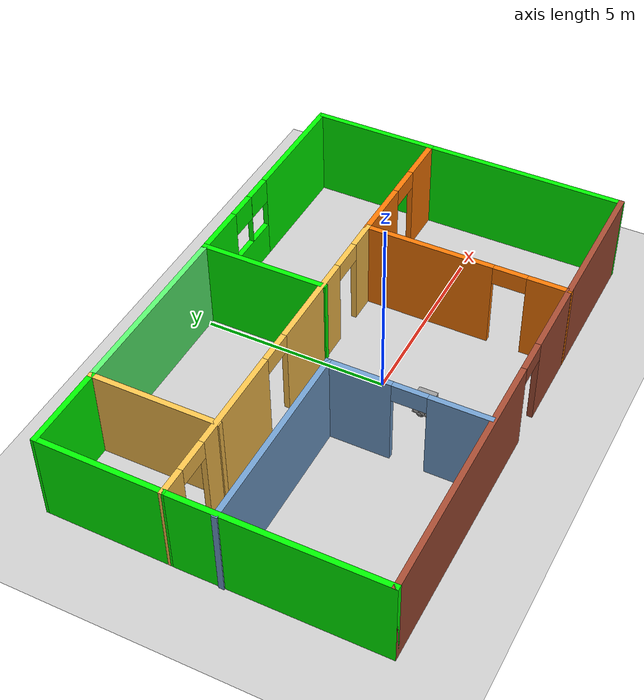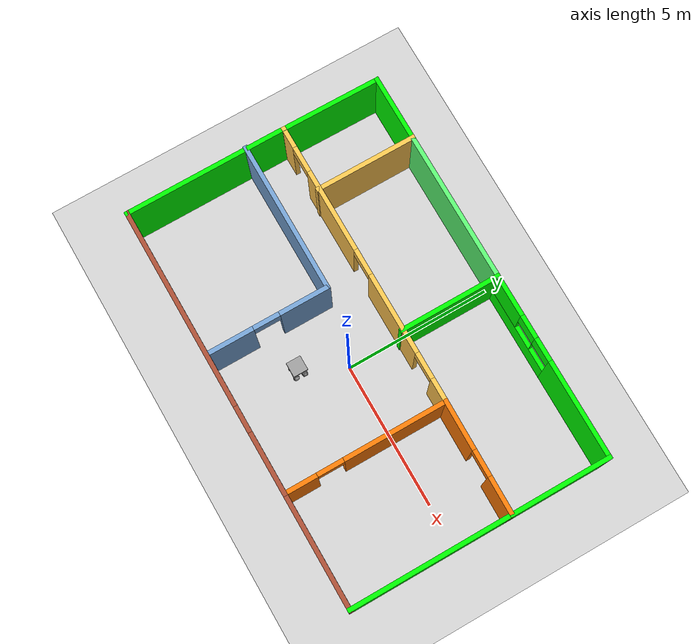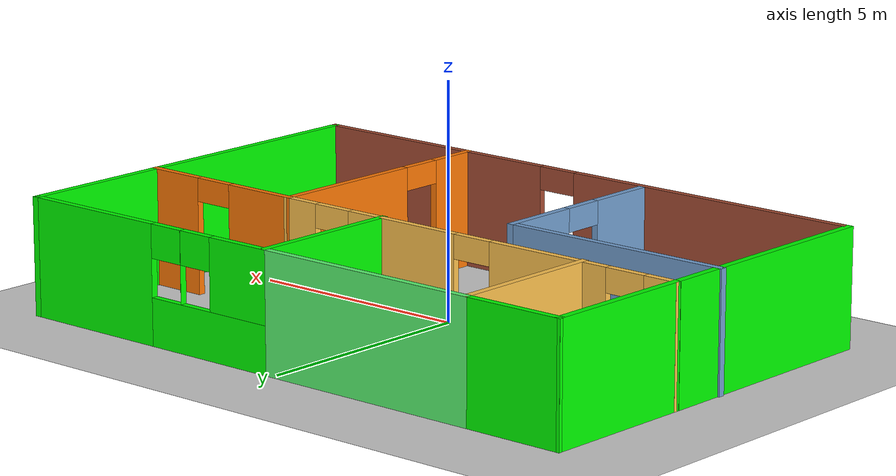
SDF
<sdf version="1.7">
 <world name="default">
  <model name="ground_plane">
   <static>1</static>
   <link name="link">
    <collision name="collision">
     <geometry><plane><normal>0 0 1</normal><size>100 100</size></plane></geometry>
     <surface>
      <contact><collide_bitmask>65535</collide_bitmask></contact>
      <friction><ode><mu>100</mu><mu2>50</mu2></ode></friction>
     </surface>
    </collision>
    <visual name="visual">
     <cast_shadows>0</cast_shadows>
     <geometry><plane><normal>0 0 1</normal><size>100 100</size></plane></geometry>
     <material>
      <script><uri>file://media/materials/scripts/gazebo.material</uri><name>Gazebo/Grey</name></script>
     </material>
    </visual>
   </link>
  </model>
  <model name="Building1">
   <pose>-0.30187 0.68592 0 0 -0 0</pose>
   <link name="Wall_13">
    <collision name="Wall_13_Collision">
     <geometry><box><size>5.5 0.15 2.5</size></box></geometry>
     <pose>0 0 1.25 0 -0 0</pose>
    </collision>
    <visual name="Wall_13_Visual">
     <pose>0 0 1.25 0 -0 0</pose>
     <geometry><box><size>5.5 0.15 2.5</size></box></geometry>
     <material>
      <script><uri>file://media/materials/scripts/gazebo.material</uri><name>Gazebo/Grey</name></script>
      <ambient>0 1 0 1</ambient>
     </material>
     <meta><layer>0</layer></meta>
    </visual>
    <pose>-6.82544 -1.72548 0 0 -0 -1.5708</pose>
   </link>
   <link name="Wall_15">
    <pose>-1.90044 -4.40048 0 0 -0 0</pose>
    <visual name="Wall_15_Visual_0">
     <pose>-1.52945 0 1.25 0 -0 0</pose>
     <geometry><box><size>6.94109 0.15 2.5</size></box></geometry>
     <material>
      <script><uri>file://media/materials/scripts/gazebo.material</uri><name>Gazebo/Bricks</name></script>
      <ambient>0 1 0 1</ambient>
     </material>
     <meta><layer>0</layer></meta>
    </visual>
    <collision name="Wall_15_Collision_0">
     <geometry><box><size>6.94109 0.15 2.5</size></box></geometry>
     <pose>-1.52945 0 1.25 0 -0 0</pose>
    </collision>
    <visual name="Wall_15_Visual_1">
     <pose>3.92055 0 1.25 0 -0 0</pose>
     <geometry><box><size>2.1589 0.15 2.5</size></box></geometry>
     <material>
      <script><uri>file://media/materials/scripts/gazebo.material</uri><name>Gazebo/Bricks</name></script>
      <ambient>0 1 0 1</ambient>
     </material>
     <meta><layer>0</layer></meta>
    </visual>
    <collision name="Wall_15_Collision_1">
     <geometry><box><size>2.1589 0.15 2.5</size></box></geometry>
     <pose>3.92055 0 1.25 0 -0 0</pose>
    </collision>
    <visual name="Wall_15_Visual_2">
     <pose>2.39109 0 2.25 0 -0 0</pose>
     <geometry><box><size>0.9 0.15 0.5</size></box></geometry>
     <material>
      <script><uri>file://media/materials/scripts/gazebo.material</uri><name>Gazebo/Bricks</name></script>
      <ambient>0 1 0 1</ambient>
     </material>
     <meta><layer>0</layer></meta>
    </visual>
    <collision name="Wall_15_Collision_2">
     <geometry><box><size>0.9 0.15 0.5</size></box></geometry>
     <pose>2.39109 0 2.25 0 -0 0</pose>
    </collision>
   </link>
   <link name="Wall_16">
    <pose>3.02456 -1.72548 0 0 -0 1.5708</pose>
    <visual name="Wall_16_Visual_0">
     <pose>-2.16708 0 1.25 0 -0 0</pose>
     <geometry><box><size>1.16585 0.15 2.5</size></box></geometry>
     <material>
      <script><uri>file://media/materials/scripts/gazebo.material</uri><name>Gazebo/Grey</name></script>
      <ambient>0.996078 0.47451 0.0196078 1</ambient>
     </material>
     <meta><layer>0</layer></meta>
    </visual>
    <collision name="Wall_16_Collision_0">
     <geometry><box><size>1.16585 0.15 2.5</size></box></geometry>
     <pose>-2.16708 0 1.25 0 -0 0</pose>
    </collision>
    <visual name="Wall_16_Visual_1">
     <pose>1.03293 0 1.25 0 -0 0</pose>
     <geometry><box><size>3.43415 0.15 2.5</size></box></geometry>
     <material>
      <script><uri>file://media/materials/scripts/gazebo.material</uri><name>Gazebo/Grey</name></script>
      <ambient>0.996078 0.47451 0.0196078 1</ambient>
     </material>
     <meta><layer>0</layer></meta>
    </visual>
    <collision name="Wall_16_Collision_1">
     <geometry><box><size>3.43415 0.15 2.5</size></box></geometry>
     <pose>1.03293 0 1.25 0 -0 0</pose>
    </collision>
    <visual name="Wall_16_Visual_2">
     <pose>-1.13415 0 2.25 0 -0 0</pose>
     <geometry><box><size>0.9 0.15 0.5</size></box></geometry>
     <material>
      <script><uri>file://media/materials/scripts/gazebo.material</uri><name>Gazebo/Grey</name></script>
      <ambient>0.996078 0.47451 0.0196078 1</ambient>
     </material>
     <meta><layer>0</layer></meta>
    </visual>
    <collision name="Wall_16_Collision_2">
     <geometry><box><size>0.9 0.15 0.5</size></box></geometry>
     <pose>-1.13415 0 2.25 0 -0 0</pose>
    </collision>
   </link>
   <link name="Wall_27">
    <pose>-1.7618 -2.28861 0 0 -0 -1.5708</pose>
    <visual name="Wall_27_Visual_0">
     <pose>-1.2562 0 1.25 0 -0 0</pose>
     <geometry><box><size>1.7376 0.15 2.5</size></box></geometry>
     <material>
      <script><uri>file://media/materials/scripts/gazebo.material</uri><name>Gazebo/Grey</name></script>
      <ambient>0.447059 0.623529 0.811765 1</ambient>
     </material>
     <meta><layer>0</layer></meta>
    </visual>
    <collision name="Wall_27_Collision_0">
     <geometry><box><size>1.7376 0.15 2.5</size></box></geometry>
     <pose>-1.2562 0 1.25 0 -0 0</pose>
    </collision>
    <visual name="Wall_27_Visual_1">
     <pose>1.3188 0 1.25 0 -0 0</pose>
     <geometry><box><size>1.6124 0.15 2.5</size></box></geometry>
     <material>
      <script><uri>file://media/materials/scripts/gazebo.material</uri><name>Gazebo/Grey</name></script>
      <ambient>0.447059 0.623529 0.811765 1</ambient>
     </material>
     <meta><layer>0</layer></meta>
    </visual>
    <collision name="Wall_27_Collision_1">
     <geometry><box><size>1.6124 0.15 2.5</size></box></geometry>
     <pose>1.3188 0 1.25 0 -0 0</pose>
    </collision>
    <visual name="Wall_27_Visual_2">
     <pose>0.062597 0 2.25 0 -0 0</pose>
     <geometry><box><size>0.9 0.15 0.5</size></box></geometry>
     <material>
      <script><uri>file://media/materials/scripts/gazebo.material</uri><name>Gazebo/Grey</name></script>
      <ambient>0.447059 0.623529 0.811765 1</ambient>
     </material>
     <meta><layer>0</layer></meta>
    </visual>
    <collision name="Wall_27_Collision_2">
     <geometry><box><size>0.9 0.15 0.5</size></box></geometry>
     <pose>0.062597 0 2.25 0 -0 0</pose>
    </collision>
   </link>
   <link name="Wall_29">
    <collision name="Wall_29_Collision">
     <geometry><box><size>5.25 0.15 2.5</size></box></geometry>
     <pose>0 0 1.25 0 -0 0</pose>
    </collision>
    <visual name="Wall_29_Visual">
     <pose>0 0 1.25 0 -0 0</pose>
     <geometry><box><size>5.25 0.15 2.5</size></box></geometry>
     <material>
      <script><uri>file://media/materials/scripts/gazebo.material</uri><name>Gazebo/Grey</name></script>
      <ambient>0.447059 0.623529 0.811765 1</ambient>
     </material>
     <meta><layer>0</layer></meta>
    </visual>
    <pose>-4.3118 -0.238606 0 0 -0 3.14159</pose>
   </link>
   <link name="Wall_33">
    <pose>-1.89541 1.08415 0 0 -0 0</pose>
    <visual name="Wall_33_Visual_0">
     <pose>-4.61696 0 1.25 0 -0 0</pose>
     <geometry><box><size>0.766073 0.15 2.5</size></box></geometry>
     <material>
      <script><uri>file://media/materials/scripts/gazebo.material</uri><name>Gazebo/Grey</name></script>
      <ambient>1 0.764706 0.305882 1</ambient>
     </material>
     <meta><layer>0</layer></meta>
    </visual>
    <collision name="Wall_33_Collision_0">
     <geometry><box><size>0.766073 0.15 2.5</size></box></geometry>
     <pose>-4.61696 0 1.25 0 -0 0</pose>
    </collision>
    <visual name="Wall_33_Visual_1">
     <pose>-1.89531 0 1.25 0 -0 0</pose>
     <geometry><box><size>2.87723 0.15 2.5</size></box></geometry>
     <material>
      <script><uri>file://media/materials/scripts/gazebo.material</uri><name>Gazebo/Grey</name></script>
      <ambient>1 0.764706 0.305882 1</ambient>
     </material>
     <meta><layer>0</layer></meta>
    </visual>
    <collision name="Wall_33_Collision_1">
     <geometry><box><size>2.87723 0.15 2.5</size></box></geometry>
     <pose>-1.89531 0 1.25 0 -0 0</pose>
    </collision>
    <visual name="Wall_33_Visual_2">
     <pose>1.83536 0 1.25 0 -0 0</pose>
     <geometry><box><size>2.78413 0.15 2.5</size></box></geometry>
     <material>
      <script><uri>file://media/materials/scripts/gazebo.material</uri><name>Gazebo/Grey</name></script>
      <ambient>1 0.764706 0.305882 1</ambient>
     </material>
     <meta><layer>0</layer></meta>
    </visual>
    <collision name="Wall_33_Collision_2">
     <geometry><box><size>2.78413 0.15 2.5</size></box></geometry>
     <pose>1.83536 0 1.25 0 -0 0</pose>
    </collision>
    <visual name="Wall_33_Visual_3">
     <pose>4.56371 0 1.25 0 -0 0</pose>
     <geometry><box><size>0.872571 0.15 2.5</size></box></geometry>
     <material>
      <script><uri>file://media/materials/scripts/gazebo.material</uri><name>Gazebo/Grey</name></script>
      <ambient>1 0.764706 0.305882 1</ambient>
     </material>
     <meta><layer>0</layer></meta>
    </visual>
    <collision name="Wall_33_Collision_3">
     <geometry><box><size>0.872571 0.15 2.5</size></box></geometry>
     <pose>4.56371 0 1.25 0 -0 0</pose>
    </collision>
    <visual name="Wall_33_Visual_4">
     <pose>-3.78393 0 2.25 0 -0 0</pose>
     <geometry><box><size>0.9 0.15 0.5</size></box></geometry>
     <material>
      <script><uri>file://media/materials/scripts/gazebo.material</uri><name>Gazebo/Grey</name></script>
      <ambient>1 0.764706 0.305882 1</ambient>
     </material>
     <meta><layer>0</layer></meta>
    </visual>
    <collision name="Wall_33_Collision_4">
     <geometry><box><size>0.9 0.15 0.5</size></box></geometry>
     <pose>-3.78393 0 2.25 0 -0 0</pose>
    </collision>
    <visual name="Wall_33_Visual_5">
     <pose>-0.006699 0 2.25 0 -0 0</pose>
     <geometry><box><size>0.9 0.15 0.5</size></box></geometry>
     <material>
      <script><uri>file://media/materials/scripts/gazebo.material</uri><name>Gazebo/Grey</name></script>
      <ambient>1 0.764706 0.305882 1</ambient>
     </material>
     <meta><layer>0</layer></meta>
    </visual>
    <collision name="Wall_33_Collision_5">
     <geometry><box><size>0.9 0.15 0.5</size></box></geometry>
     <pose>-0.006699 0 2.25 0 -0 0</pose>
    </collision>
    <visual name="Wall_33_Visual_6">
     <pose>3.67743 0 2.25 0 -0 0</pose>
     <geometry><box><size>0.9 0.15 0.5</size></box></geometry>
     <material>
      <script><uri>file://media/materials/scripts/gazebo.material</uri><name>Gazebo/Grey</name></script>
      <ambient>1 0.764706 0.305882 1</ambient>
     </material>
     <meta><layer>0</layer></meta>
    </visual>
    <collision name="Wall_33_Collision_6">
     <geometry><box><size>0.9 0.15 0.5</size></box></geometry>
     <pose>3.67743 0 2.25 0 -0 0</pose>
    </collision>
   </link>
   <link name="Wall_35">
    <collision name="Wall_35_Collision">
     <geometry><box><size>3.9867 0.15 2.5</size></box></geometry>
     <pose>0 0 1.25 0 -0 0</pose>
    </collision>
    <visual name="Wall_35_Visual">
     <pose>0 0 1.25 0 -0 0</pose>
     <geometry><box><size>3.9867 0.15 2.5</size></box></geometry>
     <material>
      <script><uri>file://media/materials/scripts/gazebo.material</uri><name>Gazebo/Bricks</name></script>
      <ambient>0 1 0 1</ambient>
     </material>
     <meta><layer>0</layer></meta>
    </visual>
    <pose>4.94285 -4.40035 0 0 -0 6.9e-05</pose>
   </link>
   <link name="Wall_36">
    <collision name="Wall_36_Collision">
     <geometry><box><size>5.6 0.15 2.5</size></box></geometry>
     <pose>0 0 1.25 0 -0 0</pose>
    </collision>
    <visual name="Wall_36_Visual">
     <pose>0 0 1.25 0 -0 0</pose>
     <geometry><box><size>5.6 0.15 2.5</size></box></geometry>
     <material>
      <script><uri>file://media/materials/scripts/gazebo.material</uri><name>Gazebo/Grey</name></script>
      <ambient>0 1 0 1</ambient>
     </material>
     <meta><layer>0</layer></meta>
    </visual>
    <pose>6.86113 -1.67522 0 0 -0 1.5708</pose>
   </link>
   <link name="Wall_38">
    <pose>4.94536 1.06696 0 0 -0 -0.008971</pose>
    <visual name="Wall_38_Visual_0">
     <pose>-1.12654 0 1.25 0 -0 0</pose>
     <geometry><box><size>1.72862 0.15 2.5</size></box></geometry>
     <material>
      <script><uri>file://media/materials/scripts/gazebo.material</uri><name>Gazebo/Grey</name></script>
      <ambient>0.996078 0.47451 0.0196078 1</ambient>
     </material>
     <meta><layer>0</layer></meta>
    </visual>
    <collision name="Wall_38_Collision_0">
     <geometry><box><size>1.72862 0.15 2.5</size></box></geometry>
     <pose>-1.12654 0 1.25 0 -0 0</pose>
    </collision>
    <visual name="Wall_38_Visual_1">
     <pose>1.31431 0 1.25 0 -0 0</pose>
     <geometry><box><size>1.35308 0.15 2.5</size></box></geometry>
     <material>
      <script><uri>file://media/materials/scripts/gazebo.material</uri><name>Gazebo/Grey</name></script>
      <ambient>0.996078 0.47451 0.0196078 1</ambient>
     </material>
     <meta><layer>0</layer></meta>
    </visual>
    <collision name="Wall_38_Collision_1">
     <geometry><box><size>1.35308 0.15 2.5</size></box></geometry>
     <pose>1.31431 0 1.25 0 -0 0</pose>
    </collision>
    <visual name="Wall_38_Visual_2">
     <pose>0.18777 0 2.25 0 -0 0</pose>
     <geometry><box><size>0.9 0.15 0.5</size></box></geometry>
     <material>
      <script><uri>file://media/materials/scripts/gazebo.material</uri><name>Gazebo/Grey</name></script>
      <ambient>0.996078 0.47451 0.0196078 1</ambient>
     </material>
     <meta><layer>0</layer></meta>
    </visual>
    <collision name="Wall_38_Collision_2">
     <geometry><box><size>0.9 0.15 0.5</size></box></geometry>
     <pose>0.18777 0 2.25 0 -0 0</pose>
    </collision>
   </link>
   <link name="Wall_43">
    <collision name="Wall_43_Collision">
     <geometry><box><size>3.5 0.15 2.5</size></box></geometry>
     <pose>0 0 1.25 0 -0 0</pose>
    </collision>
    <visual name="Wall_43_Visual">
     <pose>0 0 1.25 0 -0 0</pose>
     <geometry><box><size>3.5 0.15 2.5</size></box></geometry>
     <material>
      <script><uri>file://media/materials/scripts/gazebo.material</uri><name>Gazebo/Grey</name></script>
      <ambient>0 1 0 1</ambient>
     </material>
     <meta><layer>0</layer></meta>
    </visual>
    <pose>6.86113 2.72478 0 0 -0 1.5708</pose>
   </link>
   <link name="Wall_44">
    <pose>3.68613 4.39978 0 0 -0 3.14159</pose>
    <visual name="Wall_44_Visual_0">
     <pose>-1.54778 0 1.25 0 -0 0</pose>
     <geometry><box><size>3.40444 0.15 2.5</size></box></geometry>
     <material>
      <script><uri>file://media/materials/scripts/gazebo.material</uri><name>Gazebo/Grey</name></script>
      <ambient>0 1 0 1</ambient>
     </material>
     <meta><layer>0</layer></meta>
    </visual>
    <collision name="Wall_44_Collision_0">
     <geometry><box><size>3.40444 0.15 2.5</size></box></geometry>
     <pose>-1.54778 0 1.25 0 -0 0</pose>
    </collision>
    <visual name="Wall_44_Visual_1">
     <pose>1.70222 0 0.5 0 -0 0</pose>
     <geometry><box><size>3.09556 0.15 1</size></box></geometry>
     <material>
      <script><uri>file://media/materials/scripts/gazebo.material</uri><name>Gazebo/Grey</name></script>
      <ambient>0 1 0 1</ambient>
     </material>
     <meta><layer>0</layer></meta>
    </visual>
    <collision name="Wall_44_Collision_1">
     <geometry><box><size>3.09556 0.15 1</size></box></geometry>
     <pose>1.70222 0 0.5 0 -0 0</pose>
    </collision>
    <visual name="Wall_44_Visual_2">
     <pose>0.956713 0 1.75 0 -0 0</pose>
     <geometry><box><size>0.004543 0.15 1.5</size></box></geometry>
     <material>
      <script><uri>file://media/materials/scripts/gazebo.material</uri><name>Gazebo/Grey</name></script>
      <ambient>0 1 0 1</ambient>
     </material>
     <meta><layer>0</layer></meta>
    </visual>
    <collision name="Wall_44_Collision_2">
     <geometry><box><size>0.004543 0.15 1.5</size></box></geometry>
     <pose>0.956713 0 1.75 0 -0 0</pose>
    </collision>
    <visual name="Wall_44_Visual_3">
     <pose>2.50449 0 1.75 0 -0 0</pose>
     <geometry><box><size>1.49102 0.15 1.5</size></box></geometry>
     <material>
      <script><uri>file://media/materials/scripts/gazebo.material</uri><name>Gazebo/Grey</name></script>
      <ambient>0 1 0 1</ambient>
     </material>
     <meta><layer>0</layer></meta>
    </visual>
    <collision name="Wall_44_Collision_3">
     <geometry><box><size>1.49102 0.15 1.5</size></box></geometry>
     <pose>2.50449 0 1.75 0 -0 0</pose>
    </collision>
    <visual name="Wall_44_Visual_4">
     <pose>0.554441 0 2.15 0 -0 0</pose>
     <geometry><box><size>0.8 0.15 0.7</size></box></geometry>
     <material>
      <script><uri>file://media/materials/scripts/gazebo.material</uri><name>Gazebo/Grey</name></script>
      <ambient>0 1 0 1</ambient>
     </material>
     <meta><layer>0</layer></meta>
    </visual>
    <collision name="Wall_44_Collision_4">
     <geometry><box><size>0.8 0.15 0.7</size></box></geometry>
     <pose>0.554441 0 2.15 0 -0 0</pose>
    </collision>
    <visual name="Wall_44_Visual_5">
     <pose>1.35898 0 2.15 0 -0 0</pose>
     <geometry><box><size>0.8 0.15 0.7</size></box></geometry>
     <material>
      <script><uri>file://media/materials/scripts/gazebo.material</uri><name>Gazebo/Grey</name></script>
      <ambient>0 1 0 1</ambient>
     </material>
     <meta><layer>0</layer></meta>
    </visual>
    <collision name="Wall_44_Collision_5">
     <geometry><box><size>0.8 0.15 0.7</size></box></geometry>
     <pose>1.35898 0 2.15 0 -0 0</pose>
    </collision>
   </link>
   <link name="Wall_45">
    <collision name="Wall_45_Collision">
     <geometry><box><size>3.5 0.15 2.5</size></box></geometry>
     <pose>0 0 1.25 0 -0 0</pose>
    </collision>
    <visual name="Wall_45_Visual">
     <pose>0 0 1.25 0 -0 0</pose>
     <geometry><box><size>3.5 0.15 2.5</size></box></geometry>
     <material>
      <script><uri>file://media/materials/scripts/gazebo.material</uri><name>Gazebo/Grey</name></script>
      <ambient>0 1 0 1</ambient>
     </material>
     <meta><layer>0</layer></meta>
    </visual>
    <pose>0.511131 2.72478 0 0 -0 -1.5708</pose>
   </link>
   <link name="Wall_47">
    <collision name="Wall_47_Collision">
     <geometry><box><size>5.25 0.15 2.5</size></box></geometry>
     <pose>0 0 1.25 0 -0 0</pose>
    </collision>
    <visual name="Wall_47_Visual">
     <pose>0 0 1.25 0 -0 0</pose>
     <geometry><box><size>5.25 0.15 2.5</size></box></geometry>
     <material>
      <script><uri>file://media/materials/scripts/gazebo.material</uri><name>Gazebo/Grey</name></script>
      <ambient>0.352941 0.968627 0.439216 1</ambient>
     </material>
     <meta><layer>0</layer></meta>
    </visual>
    <pose>-2.03887 4.39978 0 0 -0 3.14159</pose>
   </link>
   <link name="Wall_48">
    <collision name="Wall_48_Collision">
     <geometry><box><size>3.5 0.15 2.5</size></box></geometry>
     <pose>0 0 1.25 0 -0 0</pose>
    </collision>
    <visual name="Wall_48_Visual">
     <pose>0 0 1.25 0 -0 0</pose>
     <geometry><box><size>3.5 0.15 2.5</size></box></geometry>
     <material>
      <script><uri>file://media/materials/scripts/gazebo.material</uri><name>Gazebo/Grey</name></script>
      <ambient>1 0.764706 0.305882 1</ambient>
     </material>
     <meta><layer>0</layer></meta>
    </visual>
    <pose>-4.58887 2.72478 0 0 -0 -1.5708</pose>
   </link>
   <link name="Wall_50">
    <collision name="Wall_50_Collision">
     <geometry><box><size>2.35 0.15 2.5</size></box></geometry>
     <pose>0 0 1.25 0 -0 0</pose>
    </collision>
    <visual name="Wall_50_Visual">
     <pose>0 0 1.25 0 -0 0</pose>
     <geometry><box><size>2.35 0.15 2.5</size></box></geometry>
     <material>
      <script><uri>file://media/materials/scripts/gazebo.material</uri><name>Gazebo/Grey</name></script>
      <ambient>0 1 0 1</ambient>
     </material>
     <meta><layer>0</layer></meta>
    </visual>
    <pose>-5.68887 4.39978 0 0 -0 3.14159</pose>
   </link>
   <link name="Wall_52">
    <collision name="Wall_52_Collision">
     <geometry><box><size>3.46578 0.15 2.5</size></box></geometry>
     <pose>0 0 1.25 0 -0 0</pose>
    </collision>
    <visual name="Wall_52_Visual">
     <pose>0 0 1.25 0 -0 0</pose>
     <geometry><box><size>3.46578 0.15 2.5</size></box></geometry>
     <material>
      <script><uri>file://media/materials/scripts/gazebo.material</uri><name>Gazebo/Grey</name></script>
      <ambient>0 1 0 1</ambient>
     </material>
     <meta><layer>0</layer></meta>
    </visual>
    <pose>-6.80464 2.74196 0 0 -0 -1.58031</pose>
   </link>
   <static>1</static>
  </model>
  <model name="2LeggedBot_clone">
   <link name="link_0">
    <inertial>
     <mass>1</mass>
     <inertia><ixx>0.1</ixx><ixy>0</ixy><ixz>0</ixz><iyy>0.1</iyy><iyz>0</iyz><izz>0.1</izz></inertia>
    </inertial>
    <pose>0.169699 -0.170527 -0.315363 0 -0 0</pose>
    <visual name="visual">
     <geometry><sphere><radius>0.1</radius></sphere></geometry>
     <material>
      <lighting>1</lighting>
      <script><uri>file://media/materials/scripts/gazebo.material</uri><name>Gazebo/Grey</name></script>
      <shader type="pixel"><normal_map>__default__</normal_map></shader>
      <ambient>0.3 0.3 0.3 1</ambient>
      <diffuse>0.7 0.7 0.7 1</diffuse>
      <specular>0.01 0.01 0.01 1</specular>
      <emissive>0 0 0 1</emissive>
     </material>
    </visual>
    <visual name="ModelPreview_2::link_0::visual_1">
     <geometry><sphere><radius>0.1</radius></sphere></geometry>
     <material>
      <lighting>1</lighting>
      <script><uri>file://media/materials/scripts/gazebo.material</uri><name>Gazebo/Grey</name></script>
      <shader type="pixel"><normal_map>__default__</normal_map></shader>
      <ambient>0.3 0.3 0.3 1</ambient>
      <diffuse>0.7 0.7 0.7 1</diffuse>
      <specular>0.01 0.01 0.01 1</specular>
      <emissive>0 0 0 1</emissive>
     </material>
    </visual>
    <collision name="collision">
     <geometry><sphere><radius>0.1</radius></sphere></geometry>
     <surface>
      <friction>
       <ode><mu>1</mu><mu2>1</mu2><fdir1>0 0 0</fdir1><slip1>0</slip1><slip2>0</slip2></ode>
       <torsional>
        <coefficient>1</coefficient>
        <patch_radius>0</patch_radius>
        <surface_radius>0</surface_radius>
        <use_patch_radius>1</use_patch_radius>
        <ode><slip>0</slip></ode>
       </torsional>
      </friction>
      <bounce><restitution_coefficient>0</restitution_coefficient><threshold>1e+06</threshold></bounce>
      <contact>
       <collide_without_contact>0</collide_without_contact>
       <collide_without_contact_bitmask>1</collide_without_contact_bitmask>
       <collide_bitmask>1</collide_bitmask>
       <ode>
        <soft_cfm>0</soft_cfm>
        <soft_erp>0.2</soft_erp>
        <kp>1e+13</kp>
        <kd>1</kd>
        <max_vel>0.01</max_vel>
        <min_depth>0</min_depth>
       </ode>
       <bullet>
        <split_impulse>1</split_impulse>
        <split_impulse_penetration_threshold>-0.01</split_impulse_penetration_threshold>
        <soft_cfm>0</soft_cfm>
        <soft_erp>0.2</soft_erp>
        <kp>1e+13</kp>
        <kd>1</kd>
       </bullet>
      </contact>
     </surface>
    </collision>
   </link>
   <link name="link_0_clone">
    <inertial>
     <mass>1</mass>
     <inertia><ixx>0.1</ixx><ixy>0</ixy><ixz>0</ixz><iyy>0.1</iyy><iyz>0</iyz><izz>0.1</izz></inertia>
    </inertial>
    <pose>0.169699 0.129473 -0.315363 0 -0 0</pose>
    <visual name="visual">
     <geometry><sphere><radius>0.1</radius></sphere></geometry>
     <material>
      <lighting>1</lighting>
      <script><uri>file://media/materials/scripts/gazebo.material</uri><name>Gazebo/Grey</name></script>
      <shader type="pixel"><normal_map>__default__</normal_map></shader>
      <ambient>0.3 0.3 0.3 1</ambient>
      <diffuse>0.7 0.7 0.7 1</diffuse>
      <specular>0.01 0.01 0.01 1</specular>
      <emissive>0 0 0 1</emissive>
     </material>
    </visual>
    <visual name="visual_1">
     <geometry><sphere><radius>0.1</radius></sphere></geometry>
     <material>
      <lighting>1</lighting>
      <script><uri>file://media/materials/scripts/gazebo.material</uri><name>Gazebo/Grey</name></script>
      <shader type="pixel"><normal_map>__default__</normal_map></shader>
      <ambient>0.3 0.3 0.3 1</ambient>
      <diffuse>0.7 0.7 0.7 1</diffuse>
      <specular>0.01 0.01 0.01 1</specular>
      <emissive>0 0 0 1</emissive>
     </material>
    </visual>
    <collision name="collision">
     <geometry><sphere><radius>0.1</radius></sphere></geometry>
     <surface>
      <friction>
       <ode><mu>1</mu><mu2>1</mu2><fdir1>0 0 0</fdir1><slip1>0</slip1><slip2>0</slip2></ode>
       <torsional>
        <coefficient>1</coefficient>
        <patch_radius>0</patch_radius>
        <surface_radius>0</surface_radius>
        <use_patch_radius>1</use_patch_radius>
        <ode><slip>0</slip></ode>
       </torsional>
      </friction>
      <bounce><restitution_coefficient>0</restitution_coefficient><threshold>1e+06</threshold></bounce>
      <contact>
       <collide_without_contact>0</collide_without_contact>
       <collide_without_contact_bitmask>1</collide_without_contact_bitmask>
       <collide_bitmask>1</collide_bitmask>
       <ode>
        <soft_cfm>0</soft_cfm>
        <soft_erp>0.2</soft_erp>
        <kp>1e+13</kp>
        <kd>1</kd>
        <max_vel>0.01</max_vel>
        <min_depth>0</min_depth>
       </ode>
       <bullet>
        <split_impulse>1</split_impulse>
        <split_impulse_penetration_threshold>-0.01</split_impulse_penetration_threshold>
        <soft_cfm>0</soft_cfm>
        <soft_erp>0.2</soft_erp>
        <kp>1e+13</kp>
        <kd>1</kd>
       </bullet>
      </contact>
     </surface>
    </collision>
   </link>
   <link name="link_0_clone_0">
    <inertial>
     <mass>1</mass>
     <inertia><ixx>0.1</ixx><ixy>0</ixy><ixz>0</ixz><iyy>0.1</iyy><iyz>0</iyz><izz>0.1</izz></inertia>
    </inertial>
    <pose>-0.088021 0.142639 0.064349 0 -0 0</pose>
    <visual name="visual_1">
     <geometry><sphere><radius>0.1</radius></sphere></geometry>
     <material>
      <lighting>1</lighting>
      <script><uri>file://media/materials/scripts/gazebo.material</uri><name>Gazebo/Grey</name></script>
      <shader type="pixel"><normal_map>__default__</normal_map></shader>
      <ambient>0.3 0.3 0.3 1</ambient>
      <diffuse>0.7 0.7 0.7 1</diffuse>
      <specular>0.01 0.01 0.01 1</specular>
      <emissive>0 0 0 1</emissive>
     </material>
    </visual>
    <visual name="visual">
     <geometry><sphere><radius>0.1</radius></sphere></geometry>
     <material>
      <lighting>1</lighting>
      <script><uri>file://media/materials/scripts/gazebo.material</uri><name>Gazebo/Grey</name></script>
      <shader type="pixel"><normal_map>__default__</normal_map></shader>
      <ambient>0.3 0.3 0.3 1</ambient>
      <diffuse>0.7 0.7 0.7 1</diffuse>
      <specular>0.01 0.01 0.01 1</specular>
      <emissive>0 0 0 1</emissive>
     </material>
    </visual>
    <collision name="collision">
     <geometry><sphere><radius>0.1</radius></sphere></geometry>
     <surface>
      <friction>
       <ode><mu>1</mu><mu2>1</mu2><fdir1>0 0 0</fdir1><slip1>0</slip1><slip2>0</slip2></ode>
       <torsional>
        <coefficient>1</coefficient>
        <patch_radius>0</patch_radius>
        <surface_radius>0</surface_radius>
        <use_patch_radius>1</use_patch_radius>
        <ode><slip>0</slip></ode>
       </torsional>
      </friction>
      <bounce><restitution_coefficient>0</restitution_coefficient><threshold>1e+06</threshold></bounce>
      <contact>
       <collide_without_contact>0</collide_without_contact>
       <collide_without_contact_bitmask>1</collide_without_contact_bitmask>
       <collide_bitmask>1</collide_bitmask>
       <ode>
        <soft_cfm>0</soft_cfm>
        <soft_erp>0.2</soft_erp>
        <kp>1e+13</kp>
        <kd>1</kd>
        <max_vel>0.01</max_vel>
        <min_depth>0</min_depth>
       </ode>
       <bullet>
        <split_impulse>1</split_impulse>
        <split_impulse_penetration_threshold>-0.01</split_impulse_penetration_threshold>
        <soft_cfm>0</soft_cfm>
        <soft_erp>0.2</soft_erp>
        <kp>1e+13</kp>
        <kd>1</kd>
       </bullet>
      </contact>
     </surface>
    </collision>
   </link>
   <link name="link_0_clone_1">
    <inertial>
     <mass>1</mass>
     <inertia><ixx>0.1</ixx><ixy>0</ixy><ixz>0</ixz><iyy>0.1</iyy><iyz>0</iyz><izz>0.1</izz></inertia>
    </inertial>
    <pose>-0.092915 -0.172952 0.04398 0 -0 0</pose>
    <visual name="visual">
     <geometry><sphere><radius>0.1</radius></sphere></geometry>
     <material>
      <lighting>1</lighting>
      <script><uri>file://media/materials/scripts/gazebo.material</uri><name>Gazebo/Grey</name></script>
      <shader type="pixel"><normal_map>__default__</normal_map></shader>
      <ambient>0.3 0.3 0.3 1</ambient>
      <diffuse>0.7 0.7 0.7 1</diffuse>
      <specular>0.01 0.01 0.01 1</specular>
      <emissive>0 0 0 1</emissive>
     </material>
    </visual>
    <visual name="visual_1">
     <geometry><sphere><radius>0.1</radius></sphere></geometry>
     <material>
      <lighting>1</lighting>
      <script><uri>file://media/materials/scripts/gazebo.material</uri><name>Gazebo/Grey</name></script>
      <shader type="pixel"><normal_map>__default__</normal_map></shader>
      <ambient>0.3 0.3 0.3 1</ambient>
      <diffuse>0.7 0.7 0.7 1</diffuse>
      <specular>0.01 0.01 0.01 1</specular>
      <emissive>0 0 0 1</emissive>
     </material>
    </visual>
    <collision name="collision">
     <geometry><sphere><radius>0.1</radius></sphere></geometry>
     <surface>
      <friction>
       <ode><mu>1</mu><mu2>1</mu2><fdir1>0 0 0</fdir1><slip1>0</slip1><slip2>0</slip2></ode>
       <torsional>
        <coefficient>1</coefficient>
        <patch_radius>0</patch_radius>
        <surface_radius>0</surface_radius>
        <use_patch_radius>1</use_patch_radius>
        <ode><slip>0</slip></ode>
       </torsional>
      </friction>
      <bounce><restitution_coefficient>0</restitution_coefficient><threshold>1e+06</threshold></bounce>
      <contact>
       <collide_without_contact>0</collide_without_contact>
       <collide_without_contact_bitmask>1</collide_without_contact_bitmask>
       <collide_bitmask>1</collide_bitmask>
       <ode>
        <soft_cfm>0</soft_cfm>
        <soft_erp>0.2</soft_erp>
        <kp>1e+13</kp>
        <kd>1</kd>
        <max_vel>0.01</max_vel>
        <min_depth>0</min_depth>
       </ode>
       <bullet>
        <split_impulse>1</split_impulse>
        <split_impulse_penetration_threshold>-0.01</split_impulse_penetration_threshold>
        <soft_cfm>0</soft_cfm>
        <soft_erp>0.2</soft_erp>
        <kp>1e+13</kp>
        <kd>1</kd>
       </bullet>
      </contact>
     </surface>
    </collision>
   </link>
   <link name="link_2">
    <inertial>
     <mass>1</mass>
     <inertia>
      <ixx>0.166667</ixx>
      <ixy>0</ixy>
      <ixz>0</ixz>
      <iyy>0.166667</iyy>
      <iyz>0</iyz>
      <izz>0.166667</izz>
     </inertia>
    </inertial>
    <pose>0.063484 -0.170527 -0.161345 0 -0.5234 0</pose>
    <visual name="visual">
     <geometry><box><size>0.15 0.15 0.5</size></box></geometry>
     <material>
      <lighting>1</lighting>
      <script><uri>file://media/materials/scripts/gazebo.material</uri><name>Gazebo/Grey</name></script>
      <shader type="pixel"><normal_map>__default__</normal_map></shader>
      <ambient>0.3 0.3 0.3 1</ambient>
      <diffuse>0.7 0.7 0.7 1</diffuse>
      <specular>0.01 0.01 0.01 1</specular>
      <emissive>0 0 0 1</emissive>
     </material>
    </visual>
    <collision name="collision">
     <geometry><box><size>0.15 0.15 0.5</size></box></geometry>
     <surface>
      <friction>
       <ode><mu>1</mu><mu2>1</mu2><fdir1>0 0 0</fdir1><slip1>0</slip1><slip2>0</slip2></ode>
       <torsional>
        <coefficient>1</coefficient>
        <patch_radius>0</patch_radius>
        <surface_radius>0</surface_radius>
        <use_patch_radius>1</use_patch_radius>
        <ode><slip>0</slip></ode>
       </torsional>
      </friction>
      <bounce><restitution_coefficient>0</restitution_coefficient><threshold>1e+06</threshold></bounce>
      <contact>
       <collide_without_contact>0</collide_without_contact>
       <collide_without_contact_bitmask>1</collide_without_contact_bitmask>
       <collide_bitmask>1</collide_bitmask>
       <ode>
        <soft_cfm>0</soft_cfm>
        <soft_erp>0.2</soft_erp>
        <kp>1e+13</kp>
        <kd>1</kd>
        <max_vel>0.01</max_vel>
        <min_depth>0</min_depth>
       </ode>
       <bullet>
        <split_impulse>1</split_impulse>
        <split_impulse_penetration_threshold>-0.01</split_impulse_penetration_threshold>
        <soft_cfm>0</soft_cfm>
        <soft_erp>0.2</soft_erp>
        <kp>1e+13</kp>
        <kd>1</kd>
       </bullet>
      </contact>
     </surface>
    </collision>
   </link>
   <link name="link_2_clone">
    <inertial>
     <mass>1</mass>
     <inertia>
      <ixx>0.166667</ixx>
      <ixy>0</ixy>
      <ixz>0</ixz>
      <iyy>0.166667</iyy>
      <iyz>0</iyz>
      <izz>0.166667</izz>
     </inertia>
    </inertial>
    <pose>0.001286 0.142639 0.21857 0 0.52 0</pose>
    <visual name="visual">
     <geometry><box><size>0.15 0.15 0.5</size></box></geometry>
     <material>
      <lighting>1</lighting>
      <script><uri>file://media/materials/scripts/gazebo.material</uri><name>Gazebo/Grey</name></script>
      <shader type="pixel"><normal_map>__default__</normal_map></shader>
      <ambient>0.3 0.3 0.3 1</ambient>
      <diffuse>0.7 0.7 0.7 1</diffuse>
      <specular>0.01 0.01 0.01 1</specular>
      <emissive>0 0 0 1</emissive>
     </material>
    </visual>
    <collision name="collision">
     <geometry><box><size>0.15 0.15 0.5</size></box></geometry>
     <surface>
      <friction>
       <ode><mu>1</mu><mu2>1</mu2><fdir1>0 0 0</fdir1><slip1>0</slip1><slip2>0</slip2></ode>
       <torsional>
        <coefficient>1</coefficient>
        <patch_radius>0</patch_radius>
        <surface_radius>0</surface_radius>
        <use_patch_radius>1</use_patch_radius>
        <ode><slip>0</slip></ode>
       </torsional>
      </friction>
      <bounce><restitution_coefficient>0</restitution_coefficient><threshold>1e+06</threshold></bounce>
      <contact>
       <collide_without_contact>0</collide_without_contact>
       <collide_without_contact_bitmask>1</collide_without_contact_bitmask>
       <collide_bitmask>1</collide_bitmask>
       <ode>
        <soft_cfm>0</soft_cfm>
        <soft_erp>0.2</soft_erp>
        <kp>1e+13</kp>
        <kd>1</kd>
        <max_vel>0.01</max_vel>
        <min_depth>0</min_depth>
       </ode>
       <bullet>
        <split_impulse>1</split_impulse>
        <split_impulse_penetration_threshold>-0.01</split_impulse_penetration_threshold>
        <soft_cfm>0</soft_cfm>
        <soft_erp>0.2</soft_erp>
        <kp>1e+13</kp>
        <kd>1</kd>
       </bullet>
      </contact>
     </surface>
    </collision>
   </link>
   <link name="link_2_clone_0">
    <inertial>
     <mass>1</mass>
     <inertia>
      <ixx>0.166667</ixx>
      <ixy>0</ixy>
      <ixz>0</ixz>
      <iyy>0.166667</iyy>
      <iyz>0</iyz>
      <izz>0.166667</izz>
     </inertia>
    </inertial>
    <pose>0.079782 0.129473 -0.161345 0 -0.5234 0</pose>
    <visual name="visual">
     <geometry><box><size>0.15 0.15 0.5</size></box></geometry>
     <material>
      <lighting>1</lighting>
      <script><uri>file://media/materials/scripts/gazebo.material</uri><name>Gazebo/Grey</name></script>
      <shader type="pixel"><normal_map>__default__</normal_map></shader>
      <ambient>0.3 0.3 0.3 1</ambient>
      <diffuse>0.7 0.7 0.7 1</diffuse>
      <specular>0.01 0.01 0.01 1</specular>
      <emissive>0 0 0 1</emissive>
     </material>
    </visual>
    <collision name="collision">
     <geometry><box><size>0.15 0.15 0.5</size></box></geometry>
     <surface>
      <friction>
       <ode><mu>1</mu><mu2>1</mu2><fdir1>0 0 0</fdir1><slip1>0</slip1><slip2>0</slip2></ode>
       <torsional>
        <coefficient>1</coefficient>
        <patch_radius>0</patch_radius>
        <surface_radius>0</surface_radius>
        <use_patch_radius>1</use_patch_radius>
        <ode><slip>0</slip></ode>
       </torsional>
      </friction>
      <bounce><restitution_coefficient>0</restitution_coefficient><threshold>1e+06</threshold></bounce>
      <contact>
       <collide_without_contact>0</collide_without_contact>
       <collide_without_contact_bitmask>1</collide_without_contact_bitmask>
       <collide_bitmask>1</collide_bitmask>
       <ode>
        <soft_cfm>0</soft_cfm>
        <soft_erp>0.2</soft_erp>
        <kp>1e+13</kp>
        <kd>1</kd>
        <max_vel>0.01</max_vel>
        <min_depth>0</min_depth>
       </ode>
       <bullet>
        <split_impulse>1</split_impulse>
        <split_impulse_penetration_threshold>-0.01</split_impulse_penetration_threshold>
        <soft_cfm>0</soft_cfm>
        <soft_erp>0.2</soft_erp>
        <kp>1e+13</kp>
        <kd>1</kd>
       </bullet>
      </contact>
     </surface>
    </collision>
   </link>
   <link name="link_2_clone_clone">
    <inertial>
     <mass>1</mass>
     <inertia>
      <ixx>0.166667</ixx>
      <ixy>0</ixy>
      <ixz>0</ixz>
      <iyy>0.166667</iyy>
      <iyz>0</iyz>
      <izz>0.166667</izz>
     </inertia>
    </inertial>
    <pose>-0.003609 -0.172952 0.1982 0 0.52 0</pose>
    <visual name="visual">
     <geometry><box><size>0.15 0.15 0.5</size></box></geometry>
     <material>
      <lighting>1</lighting>
      <script><uri>file://media/materials/scripts/gazebo.material</uri><name>Gazebo/Grey</name></script>
      <shader type="pixel"><normal_map>__default__</normal_map></shader>
      <ambient>0.3 0.3 0.3 1</ambient>
      <diffuse>0.7 0.7 0.7 1</diffuse>
      <specular>0.01 0.01 0.01 1</specular>
      <emissive>0 0 0 1</emissive>
     </material>
    </visual>
    <collision name="collision">
     <geometry><box><size>0.15 0.15 0.5</size></box></geometry>
     <surface>
      <friction>
       <ode><mu>1</mu><mu2>1</mu2><fdir1>0 0 0</fdir1><slip1>0</slip1><slip2>0</slip2></ode>
       <torsional>
        <coefficient>1</coefficient>
        <patch_radius>0</patch_radius>
        <surface_radius>0</surface_radius>
        <use_patch_radius>1</use_patch_radius>
        <ode><slip>0</slip></ode>
       </torsional>
      </friction>
      <bounce><restitution_coefficient>0</restitution_coefficient><threshold>1e+06</threshold></bounce>
      <contact>
       <collide_without_contact>0</collide_without_contact>
       <collide_without_contact_bitmask>1</collide_without_contact_bitmask>
       <collide_bitmask>1</collide_bitmask>
       <ode>
        <soft_cfm>0</soft_cfm>
        <soft_erp>0.2</soft_erp>
        <kp>1e+13</kp>
        <kd>1</kd>
        <max_vel>0.01</max_vel>
        <min_depth>0</min_depth>
       </ode>
       <bullet>
        <split_impulse>1</split_impulse>
        <split_impulse_penetration_threshold>-0.01</split_impulse_penetration_threshold>
        <soft_cfm>0</soft_cfm>
        <soft_erp>0.2</soft_erp>
        <kp>1e+13</kp>
        <kd>1</kd>
       </bullet>
      </contact>
     </surface>
    </collision>
   </link>
   <link name="link_3">
    <inertial>
     <mass>1</mass>
     <inertia>
      <ixx>0.166667</ixx>
      <ixy>0</ixy>
      <ixz>0</ixz>
      <iyy>0.166667</iyy>
      <iyz>0</iyz>
      <izz>0.166667</izz>
     </inertia>
    </inertial>
    <pose>0.014885 -0.015108 0.428317 0 -0 0</pose>
    <visual name="visual">
     <geometry><box><size>0.5 0.5 0.1</size></box></geometry>
     <material>
      <lighting>1</lighting>
      <script><uri>file://media/materials/scripts/gazebo.material</uri><name>Gazebo/Grey</name></script>
      <shader type="pixel"><normal_map>__default__</normal_map></shader>
      <ambient>0.3 0.3 0.3 1</ambient>
      <diffuse>0.7 0.7 0.7 1</diffuse>
      <specular>0.01 0.01 0.01 1</specular>
      <emissive>0 0 0 1</emissive>
     </material>
    </visual>
    <collision name="collision">
     <geometry><box><size>0.5 0.5 0.1</size></box></geometry>
     <surface>
      <friction>
       <ode><mu>1</mu><mu2>1</mu2><fdir1>0 0 0</fdir1><slip1>0</slip1><slip2>0</slip2></ode>
       <torsional>
        <coefficient>1</coefficient>
        <patch_radius>0</patch_radius>
        <surface_radius>0</surface_radius>
        <use_patch_radius>1</use_patch_radius>
        <ode><slip>0</slip></ode>
       </torsional>
      </friction>
      <bounce><restitution_coefficient>0</restitution_coefficient><threshold>1e+06</threshold></bounce>
      <contact>
       <collide_without_contact>0</collide_without_contact>
       <collide_without_contact_bitmask>1</collide_without_contact_bitmask>
       <collide_bitmask>1</collide_bitmask>
       <ode>
        <soft_cfm>0</soft_cfm>
        <soft_erp>0.2</soft_erp>
        <kp>1e+13</kp>
        <kd>1</kd>
        <max_vel>0.01</max_vel>
        <min_depth>0</min_depth>
       </ode>
       <bullet>
        <split_impulse>1</split_impulse>
        <split_impulse_penetration_threshold>-0.01</split_impulse_penetration_threshold>
        <soft_cfm>0</soft_cfm>
        <soft_erp>0.2</soft_erp>
        <kp>1e+13</kp>
        <kd>1</kd>
       </bullet>
      </contact>
     </surface>
    </collision>
   </link>
   <joint name="link_0_clone_0_JOINT_4" type="revolute">
    <parent>link_0_clone_0</parent>
    <child>link_2_clone</child>
    <axis>
     <xyz>1 0 0</xyz>
     <limit>
      <lower>-1.79769e+308</lower>
      <upper>1.79769e+308</upper>
      <effort>-1</effort>
      <velocity>-1</velocity>
     </limit>
     <dynamics>
      <spring_reference>0</spring_reference>
      <spring_stiffness>0</spring_stiffness>
      <damping>0</damping>
      <friction>0</friction>
     </dynamics>
    </axis>
    <physics>
     <ode><limit><cfm>0</cfm><erp>0.2</erp></limit><suspension><cfm>0</cfm><erp>0.2</erp></suspension></ode>
    </physics>
   </joint>
   <joint name="link_0_clone_1_JOINT_5" type="revolute">
    <parent>link_0_clone_1</parent>
    <child>link_2_clone_clone</child>
    <axis>
     <xyz>1 0 0</xyz>
     <limit>
      <lower>-1.79769e+308</lower>
      <upper>1.79769e+308</upper>
      <effort>-1</effort>
      <velocity>-1</velocity>
     </limit>
     <dynamics>
      <spring_reference>0</spring_reference>
      <spring_stiffness>0</spring_stiffness>
      <damping>0</damping>
      <friction>0</friction>
     </dynamics>
    </axis>
    <physics>
     <ode><limit><cfm>0</cfm><erp>0.2</erp></limit><suspension><cfm>0</cfm><erp>0.2</erp></suspension></ode>
    </physics>
   </joint>
   <joint name="link_0_clone_JOINT_1" type="fixed">
    <parent>link_0_clone</parent>
    <child>link_2_clone_0</child>
    <physics>
     <ode><limit><cfm>0</cfm><erp>0.2</erp></limit><suspension><cfm>0</cfm><erp>0.2</erp></suspension></ode>
    </physics>
   </joint>
   <joint name="link_2_JOINT_0" type="fixed">
    <parent>link_0</parent>
    <child>link_2</child>
    <physics>
     <ode><limit><cfm>0</cfm><erp>0.2</erp></limit><suspension><cfm>0</cfm><erp>0.2</erp></suspension></ode>
    </physics>
   </joint>
   <joint name="link_2_JOINT_2" type="revolute">
    <parent>link_2</parent>
    <child>link_0_clone_1</child>
    <axis>
     <xyz>1 0 0</xyz>
     <limit>
      <lower>-1.79769e+308</lower>
      <upper>1.79769e+308</upper>
      <effort>-1</effort>
      <velocity>-1</velocity>
     </limit>
     <dynamics>
      <spring_reference>0</spring_reference>
      <spring_stiffness>0</spring_stiffness>
      <damping>0</damping>
      <friction>0</friction>
     </dynamics>
    </axis>
    <physics>
     <ode><limit><cfm>0</cfm><erp>0.2</erp></limit><suspension><cfm>0</cfm><erp>0.2</erp></suspension></ode>
    </physics>
   </joint>
   <joint name="link_2_clone_0_JOINT_3" type="fixed">
    <parent>link_2_clone_0</parent>
    <child>link_0_clone_0</child>
    <physics>
     <ode><limit><cfm>0</cfm><erp>0.2</erp></limit><suspension><cfm>0</cfm><erp>0.2</erp></suspension></ode>
    </physics>
   </joint>
   <joint name="link_2_clone_JOINT_8" type="fixed">
    <parent>link_2_clone</parent>
    <child>link_3</child>
    <physics>
     <ode><limit><cfm>0</cfm><erp>0.2</erp></limit><suspension><cfm>0</cfm><erp>0.2</erp></suspension></ode>
    </physics>
   </joint>
   <joint name="link_3_JOINT_7" type="fixed">
    <parent>link_3</parent>
    <child>link_2_clone_clone</child>
    <physics>
     <ode><limit><cfm>0</cfm><erp>0.2</erp></limit><suspension><cfm>0</cfm><erp>0.2</erp></suspension></ode>
    </physics>
   </joint>
   <static>1</static>
   <pose>-0.714927 -1.44623 0.43836 0 -0 0</pose>
  </model>
 </world>
</sdf>
